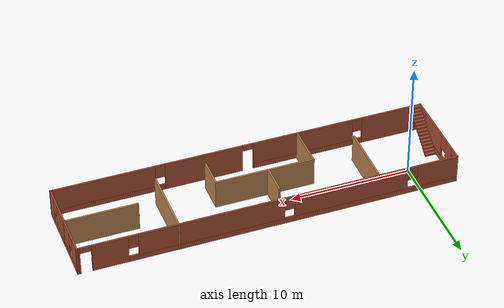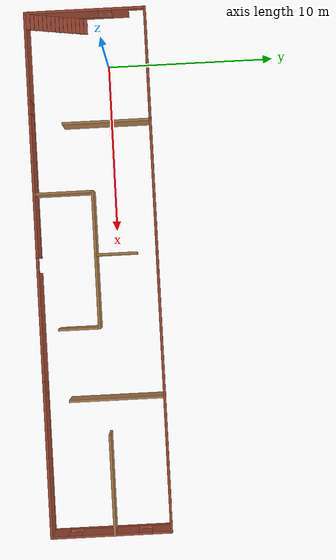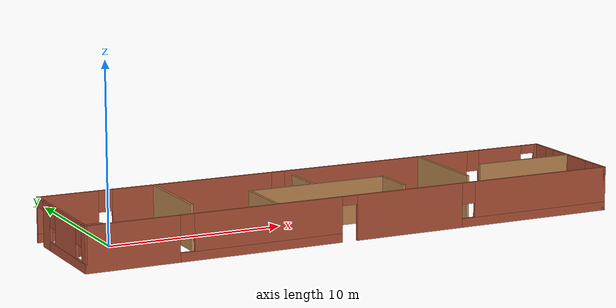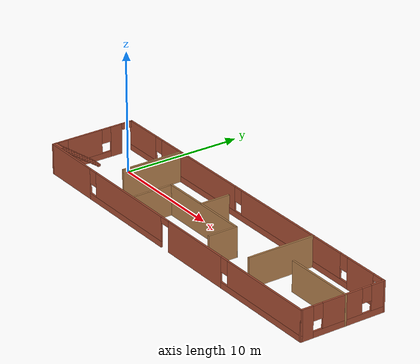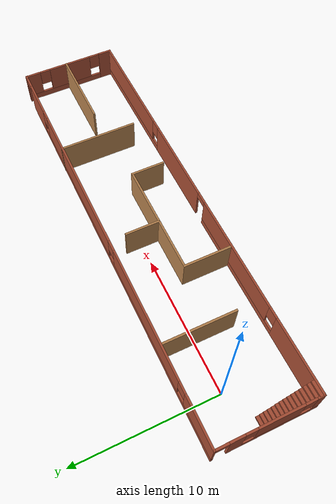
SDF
<?xml version='1.0'?>
<sdf version='1.7'>
  <model name='custom_world2.world'>
    <pose>12.5164 -1.16427 0 0 -0 0</pose>
    <link name='Stairs_1'>
      <visual name='Stairs_1_Visual_0'>
        <pose>-15.0705 -0.112993 0.083333 0 -0 0</pose>
        <geometry>
          <box>
            <size>1 0.233333 0.166667</size>
          </box>
        </geometry>
        <material>
          <script>
            <uri>file://media/materials/scripts/gazebo.material</uri>
            <name>Gazebo/Bricks</name>
          </script>
          <ambient>0.921569 0.807843 0.615686 1</ambient>
        </material>
        <meta>
          <layer>0</layer>
        </meta>
      </visual>
      <collision name='Stairs_1_Collision_0'>
        <geometry>
          <box>
            <size>1 0.233333 0.166667</size>
          </box>
        </geometry>
        <pose>-15.0705 -0.112993 0.083333 0 -0 0</pose>
      </collision>
      <visual name='Stairs_1_Visual_1'>
        <pose>-15.0705 -0.346326 0.25 0 -0 0</pose>
        <geometry>
          <box>
            <size>1 0.233333 0.166667</size>
          </box>
        </geometry>
        <material>
          <script>
            <uri>file://media/materials/scripts/gazebo.material</uri>
            <name>Gazebo/Bricks</name>
          </script>
          <ambient>0.921569 0.807843 0.615686 1</ambient>
        </material>
        <meta>
          <layer>0</layer>
        </meta>
      </visual>
      <collision name='Stairs_1_Collision_1'>
        <geometry>
          <box>
            <size>1 0.233333 0.166667</size>
          </box>
        </geometry>
        <pose>-15.0705 -0.346326 0.25 0 -0 0</pose>
      </collision>
      <visual name='Stairs_1_Visual_2'>
        <pose>-15.0705 -0.579659 0.416667 0 -0 0</pose>
        <geometry>
          <box>
            <size>1 0.233333 0.166667</size>
          </box>
        </geometry>
        <material>
          <script>
            <uri>file://media/materials/scripts/gazebo.material</uri>
            <name>Gazebo/Bricks</name>
          </script>
          <ambient>0.921569 0.807843 0.615686 1</ambient>
        </material>
        <meta>
          <layer>0</layer>
        </meta>
      </visual>
      <collision name='Stairs_1_Collision_2'>
        <geometry>
          <box>
            <size>1 0.233333 0.166667</size>
          </box>
        </geometry>
        <pose>-15.0705 -0.579659 0.416667 0 -0 0</pose>
      </collision>
      <visual name='Stairs_1_Visual_3'>
        <pose>-15.0705 -0.812993 0.583333 0 -0 0</pose>
        <geometry>
          <box>
            <size>1 0.233333 0.166667</size>
          </box>
        </geometry>
        <material>
          <script>
            <uri>file://media/materials/scripts/gazebo.material</uri>
            <name>Gazebo/Bricks</name>
          </script>
          <ambient>0.921569 0.807843 0.615686 1</ambient>
        </material>
        <meta>
          <layer>0</layer>
        </meta>
      </visual>
      <collision name='Stairs_1_Collision_3'>
        <geometry>
          <box>
            <size>1 0.233333 0.166667</size>
          </box>
        </geometry>
        <pose>-15.0705 -0.812993 0.583333 0 -0 0</pose>
      </collision>
      <visual name='Stairs_1_Visual_4'>
        <pose>-15.0705 -1.04633 0.75 0 -0 0</pose>
        <geometry>
          <box>
            <size>1 0.233333 0.166667</size>
          </box>
        </geometry>
        <material>
          <script>
            <uri>file://media/materials/scripts/gazebo.material</uri>
            <name>Gazebo/Bricks</name>
          </script>
          <ambient>0.921569 0.807843 0.615686 1</ambient>
        </material>
        <meta>
          <layer>0</layer>
        </meta>
      </visual>
      <collision name='Stairs_1_Collision_4'>
        <geometry>
          <box>
            <size>1 0.233333 0.166667</size>
          </box>
        </geometry>
        <pose>-15.0705 -1.04633 0.75 0 -0 0</pose>
      </collision>
      <visual name='Stairs_1_Visual_5'>
        <pose>-15.0705 -1.27966 0.916667 0 -0 0</pose>
        <geometry>
          <box>
            <size>1 0.233333 0.166667</size>
          </box>
        </geometry>
        <material>
          <script>
            <uri>file://media/materials/scripts/gazebo.material</uri>
            <name>Gazebo/Bricks</name>
          </script>
          <ambient>0.921569 0.807843 0.615686 1</ambient>
        </material>
        <meta>
          <layer>0</layer>
        </meta>
      </visual>
      <collision name='Stairs_1_Collision_5'>
        <geometry>
          <box>
            <size>1 0.233333 0.166667</size>
          </box>
        </geometry>
        <pose>-15.0705 -1.27966 0.916667 0 -0 0</pose>
      </collision>
      <visual name='Stairs_1_Visual_6'>
        <pose>-15.0705 -1.51299 1.08333 0 -0 0</pose>
        <geometry>
          <box>
            <size>1 0.233333 0.166667</size>
          </box>
        </geometry>
        <material>
          <script>
            <uri>file://media/materials/scripts/gazebo.material</uri>
            <name>Gazebo/Bricks</name>
          </script>
          <ambient>0.921569 0.807843 0.615686 1</ambient>
        </material>
        <meta>
          <layer>0</layer>
        </meta>
      </visual>
      <collision name='Stairs_1_Collision_6'>
        <geometry>
          <box>
            <size>1 0.233333 0.166667</size>
          </box>
        </geometry>
        <pose>-15.0705 -1.51299 1.08333 0 -0 0</pose>
      </collision>
      <visual name='Stairs_1_Visual_7'>
        <pose>-15.0705 -1.74633 1.25 0 -0 0</pose>
        <geometry>
          <box>
            <size>1 0.233333 0.166667</size>
          </box>
        </geometry>
        <material>
          <script>
            <uri>file://media/materials/scripts/gazebo.material</uri>
            <name>Gazebo/Bricks</name>
          </script>
          <ambient>0.921569 0.807843 0.615686 1</ambient>
        </material>
        <meta>
          <layer>0</layer>
        </meta>
      </visual>
      <collision name='Stairs_1_Collision_7'>
        <geometry>
          <box>
            <size>1 0.233333 0.166667</size>
          </box>
        </geometry>
        <pose>-15.0705 -1.74633 1.25 0 -0 0</pose>
      </collision>
      <visual name='Stairs_1_Visual_8'>
        <pose>-15.0705 -1.97966 1.41667 0 -0 0</pose>
        <geometry>
          <box>
            <size>1 0.233333 0.166667</size>
          </box>
        </geometry>
        <material>
          <script>
            <uri>file://media/materials/scripts/gazebo.material</uri>
            <name>Gazebo/Bricks</name>
          </script>
          <ambient>0.921569 0.807843 0.615686 1</ambient>
        </material>
        <meta>
          <layer>0</layer>
        </meta>
      </visual>
      <collision name='Stairs_1_Collision_8'>
        <geometry>
          <box>
            <size>1 0.233333 0.166667</size>
          </box>
        </geometry>
        <pose>-15.0705 -1.97966 1.41667 0 -0 0</pose>
      </collision>
      <visual name='Stairs_1_Visual_9'>
        <pose>-15.0705 -2.21299 1.58333 0 -0 0</pose>
        <geometry>
          <box>
            <size>1 0.233333 0.166667</size>
          </box>
        </geometry>
        <material>
          <script>
            <uri>file://media/materials/scripts/gazebo.material</uri>
            <name>Gazebo/Bricks</name>
          </script>
          <ambient>0.921569 0.807843 0.615686 1</ambient>
        </material>
        <meta>
          <layer>0</layer>
        </meta>
      </visual>
      <collision name='Stairs_1_Collision_9'>
        <geometry>
          <box>
            <size>1 0.233333 0.166667</size>
          </box>
        </geometry>
        <pose>-15.0705 -2.21299 1.58333 0 -0 0</pose>
      </collision>
      <visual name='Stairs_1_Visual_10'>
        <pose>-15.0705 -2.44633 1.75 0 -0 0</pose>
        <geometry>
          <box>
            <size>1 0.233333 0.166667</size>
          </box>
        </geometry>
        <material>
          <script>
            <uri>file://media/materials/scripts/gazebo.material</uri>
            <name>Gazebo/Bricks</name>
          </script>
          <ambient>0.921569 0.807843 0.615686 1</ambient>
        </material>
        <meta>
          <layer>0</layer>
        </meta>
      </visual>
      <collision name='Stairs_1_Collision_10'>
        <geometry>
          <box>
            <size>1 0.233333 0.166667</size>
          </box>
        </geometry>
        <pose>-15.0705 -2.44633 1.75 0 -0 0</pose>
      </collision>
      <visual name='Stairs_1_Visual_11'>
        <pose>-15.0705 -2.67966 1.91667 0 -0 0</pose>
        <geometry>
          <box>
            <size>1 0.233333 0.166667</size>
          </box>
        </geometry>
        <material>
          <script>
            <uri>file://media/materials/scripts/gazebo.material</uri>
            <name>Gazebo/Bricks</name>
          </script>
          <ambient>0.921569 0.807843 0.615686 1</ambient>
        </material>
        <meta>
          <layer>0</layer>
        </meta>
      </visual>
      <collision name='Stairs_1_Collision_11'>
        <geometry>
          <box>
            <size>1 0.233333 0.166667</size>
          </box>
        </geometry>
        <pose>-15.0705 -2.67966 1.91667 0 -0 0</pose>
      </collision>
      <visual name='Stairs_1_Visual_12'>
        <pose>-15.0705 -2.91299 2.08333 0 -0 0</pose>
        <geometry>
          <box>
            <size>1 0.233333 0.166667</size>
          </box>
        </geometry>
        <material>
          <script>
            <uri>file://media/materials/scripts/gazebo.material</uri>
            <name>Gazebo/Bricks</name>
          </script>
          <ambient>0.921569 0.807843 0.615686 1</ambient>
        </material>
        <meta>
          <layer>0</layer>
        </meta>
      </visual>
      <collision name='Stairs_1_Collision_12'>
        <geometry>
          <box>
            <size>1 0.233333 0.166667</size>
          </box>
        </geometry>
        <pose>-15.0705 -2.91299 2.08333 0 -0 0</pose>
      </collision>
      <visual name='Stairs_1_Visual_13'>
        <pose>-15.0705 -3.14633 2.25 0 -0 0</pose>
        <geometry>
          <box>
            <size>1 0.233333 0.166667</size>
          </box>
        </geometry>
        <material>
          <script>
            <uri>file://media/materials/scripts/gazebo.material</uri>
            <name>Gazebo/Bricks</name>
          </script>
          <ambient>0.921569 0.807843 0.615686 1</ambient>
        </material>
        <meta>
          <layer>0</layer>
        </meta>
      </visual>
      <collision name='Stairs_1_Collision_13'>
        <geometry>
          <box>
            <size>1 0.233333 0.166667</size>
          </box>
        </geometry>
        <pose>-15.0705 -3.14633 2.25 0 -0 0</pose>
      </collision>
      <visual name='Stairs_1_Visual_14'>
        <pose>-15.0705 -3.37966 2.41667 0 -0 0</pose>
        <geometry>
          <box>
            <size>1 0.233333 0.166667</size>
          </box>
        </geometry>
        <material>
          <script>
            <uri>file://media/materials/scripts/gazebo.material</uri>
            <name>Gazebo/Bricks</name>
          </script>
          <ambient>0.921569 0.807843 0.615686 1</ambient>
        </material>
        <meta>
          <layer>0</layer>
        </meta>
      </visual>
      <collision name='Stairs_1_Collision_14'>
        <geometry>
          <box>
            <size>1 0.233333 0.166667</size>
          </box>
        </geometry>
        <pose>-15.0705 -3.37966 2.41667 0 -0 0</pose>
      </collision>
    </link>
    <link name='Wall_10'>
      <pose>-0.006953 3.53941 0 0 -0 3.14159</pose>
      <visual name='Wall_10_Visual_0'>
        <pose>-15.4743 0 1.25 0 -0 0</pose>
        <geometry>
          <box>
            <size>0.301407 0.15 2.5</size>
          </box>
        </geometry>
        <material>
          <script>
            <uri>file://media/materials/scripts/gazebo.material</uri>
            <name>Gazebo/Bricks</name>
          </script>
          <ambient>1 1 1 1</ambient>
        </material>
        <meta>
          <layer>0</layer>
        </meta>
      </visual>
      <collision name='Wall_10_Collision_0'>
        <geometry>
          <box>
            <size>0.301407 0.15 2.5</size>
          </box>
        </geometry>
        <pose>-15.4743 0 1.25 0 -0 0</pose>
      </collision>
      <visual name='Wall_10_Visual_1'>
        <pose>-12.9841 0 1.25 0 -0 0</pose>
        <geometry>
          <box>
            <size>2.87895 0.15 2.5</size>
          </box>
        </geometry>
        <material>
          <script>
            <uri>file://media/materials/scripts/gazebo.material</uri>
            <name>Gazebo/Bricks</name>
          </script>
          <ambient>1 1 1 1</ambient>
        </material>
        <meta>
          <layer>0</layer>
        </meta>
      </visual>
      <collision name='Wall_10_Collision_1'>
        <geometry>
          <box>
            <size>2.87895 0.15 2.5</size>
          </box>
        </geometry>
        <pose>-12.9841 0 1.25 0 -0 0</pose>
      </collision>
      <visual name='Wall_10_Visual_2'>
        <pose>2.04018 0 0.25 0 -0 0</pose>
        <geometry>
          <box>
            <size>27.1696 0.15 0.5</size>
          </box>
        </geometry>
        <material>
          <script>
            <uri>file://media/materials/scripts/gazebo.material</uri>
            <name>Gazebo/Bricks</name>
          </script>
          <ambient>1 1 1 1</ambient>
        </material>
        <meta>
          <layer>0</layer>
        </meta>
      </visual>
      <collision name='Wall_10_Collision_2'>
        <geometry>
          <box>
            <size>27.1696 0.15 0.5</size>
          </box>
        </geometry>
        <pose>2.04018 0 0.25 0 -0 0</pose>
      </collision>
      <visual name='Wall_10_Visual_3'>
        <pose>-4.84765 0 1.5 0 -0 0</pose>
        <geometry>
          <box>
            <size>11.794 0.15 2</size>
          </box>
        </geometry>
        <material>
          <script>
            <uri>file://media/materials/scripts/gazebo.material</uri>
            <name>Gazebo/Bricks</name>
          </script>
          <ambient>1 1 1 1</ambient>
        </material>
        <meta>
          <layer>0</layer>
        </meta>
      </visual>
      <collision name='Wall_10_Collision_3'>
        <geometry>
          <box>
            <size>11.794 0.15 2</size>
          </box>
        </geometry>
        <pose>-4.84765 0 1.5 0 -0 0</pose>
      </collision>
      <visual name='Wall_10_Visual_4'>
        <pose>6.60304 0 1.5 0 -0 0</pose>
        <geometry>
          <box>
            <size>9.50738 0.15 2</size>
          </box>
        </geometry>
        <material>
          <script>
            <uri>file://media/materials/scripts/gazebo.material</uri>
            <name>Gazebo/Bricks</name>
          </script>
          <ambient>1 1 1 1</ambient>
        </material>
        <meta>
          <layer>0</layer>
        </meta>
      </visual>
      <collision name='Wall_10_Collision_4'>
        <geometry>
          <box>
            <size>9.50738 0.15 2</size>
          </box>
        </geometry>
        <pose>6.60304 0 1.5 0 -0 0</pose>
      </collision>
      <visual name='Wall_10_Visual_5'>
        <pose>13.8909 0 1.5 0 -0 0</pose>
        <geometry>
          <box>
            <size>3.46827 0.15 2</size>
          </box>
        </geometry>
        <material>
          <script>
            <uri>file://media/materials/scripts/gazebo.material</uri>
            <name>Gazebo/Bricks</name>
          </script>
          <ambient>1 1 1 1</ambient>
        </material>
        <meta>
          <layer>0</layer>
        </meta>
      </visual>
      <collision name='Wall_10_Collision_5'>
        <geometry>
          <box>
            <size>3.46827 0.15 2</size>
          </box>
        </geometry>
        <pose>13.8909 0 1.5 0 -0 0</pose>
      </collision>
      <visual name='Wall_10_Visual_6'>
        <pose>-11.1446 0 1.9 0 -0 0</pose>
        <geometry>
          <box>
            <size>0.8 0.15 1.2</size>
          </box>
        </geometry>
        <material>
          <script>
            <uri>file://media/materials/scripts/gazebo.material</uri>
            <name>Gazebo/Bricks</name>
          </script>
          <ambient>1 1 1 1</ambient>
        </material>
        <meta>
          <layer>0</layer>
        </meta>
      </visual>
      <collision name='Wall_10_Collision_6'>
        <geometry>
          <box>
            <size>0.8 0.15 1.2</size>
          </box>
        </geometry>
        <pose>-11.1446 0 1.9 0 -0 0</pose>
      </collision>
      <visual name='Wall_10_Visual_7'>
        <pose>1.44935 0 1.9 0 -0 0</pose>
        <geometry>
          <box>
            <size>0.8 0.15 1.2</size>
          </box>
        </geometry>
        <material>
          <script>
            <uri>file://media/materials/scripts/gazebo.material</uri>
            <name>Gazebo/Bricks</name>
          </script>
          <ambient>1 1 1 1</ambient>
        </material>
        <meta>
          <layer>0</layer>
        </meta>
      </visual>
      <collision name='Wall_10_Collision_7'>
        <geometry>
          <box>
            <size>0.8 0.15 1.2</size>
          </box>
        </geometry>
        <pose>1.44935 0 1.9 0 -0 0</pose>
      </collision>
      <visual name='Wall_10_Visual_8'>
        <pose>11.7567 0 1.9 0 -0 0</pose>
        <geometry>
          <box>
            <size>0.8 0.15 1.2</size>
          </box>
        </geometry>
        <material>
          <script>
            <uri>file://media/materials/scripts/gazebo.material</uri>
            <name>Gazebo/Bricks</name>
          </script>
          <ambient>1 1 1 1</ambient>
        </material>
        <meta>
          <layer>0</layer>
        </meta>
      </visual>
      <collision name='Wall_10_Collision_8'>
        <geometry>
          <box>
            <size>0.8 0.15 1.2</size>
          </box>
        </geometry>
        <pose>11.7567 0 1.9 0 -0 0</pose>
      </collision>
      <visual name='Wall_10_Visual_9'>
        <pose>-14.8736 0 2.25 0 -0 0</pose>
        <geometry>
          <box>
            <size>0.9 0.15 0.5</size>
          </box>
        </geometry>
        <material>
          <script>
            <uri>file://media/materials/scripts/gazebo.material</uri>
            <name>Gazebo/Bricks</name>
          </script>
          <ambient>1 1 1 1</ambient>
        </material>
        <meta>
          <layer>0</layer>
        </meta>
      </visual>
      <collision name='Wall_10_Collision_9'>
        <geometry>
          <box>
            <size>0.9 0.15 0.5</size>
          </box>
        </geometry>
        <pose>-14.8736 0 2.25 0 -0 0</pose>
      </collision>
    </link>
    <link name='Wall_12'>
      <collision name='Wall_12_Collision'>
        <geometry>
          <box>
            <size>5.25 0.15 2.5</size>
          </box>
        </geometry>
        <pose>0 0 1.25 0 -0 0</pose>
      </collision>
      <visual name='Wall_12_Visual'>
        <pose>0 0 1.25 0 -0 0</pose>
        <geometry>
          <box>
            <size>5.25 0.15 2.5</size>
          </box>
        </geometry>
        <material>
          <script>
            <uri>file://media/materials/scripts/gazebo.material</uri>
            <name>Gazebo/Wood</name>
          </script>
          <ambient>0.996078 0.47451 0.0196078 1</ambient>
        </material>
        <meta>
          <layer>0</layer>
        </meta>
      </visual>
      <pose>-8.92219 0.940233 0 0 -0 -1.5708</pose>
    </link>
    <link name='Wall_14'>
      <collision name='Wall_14_Collision'>
        <geometry>
          <box>
            <size>3.5 0.15 2.5</size>
          </box>
        </geometry>
        <pose>0 0 1.25 0 -0 0</pose>
      </collision>
      <visual name='Wall_14_Visual'>
        <pose>0 0 1.25 0 -0 0</pose>
        <geometry>
          <box>
            <size>3.5 0.15 2.5</size>
          </box>
        </geometry>
        <material>
          <script>
            <uri>file://media/materials/scripts/gazebo.material</uri>
            <name>Gazebo/Wood</name>
          </script>
          <ambient>0.996078 0.47451 0.0196078 1</ambient>
        </material>
        <meta>
          <layer>0</layer>
        </meta>
      </visual>
      <pose>-4.83266 -1.77906 0 0 -0 1.5708</pose>
    </link>
    <link name='Wall_15'>
      <collision name='Wall_15_Collision'>
        <geometry>
          <box>
            <size>8.25 0.15 2.5</size>
          </box>
        </geometry>
        <pose>0 0 1.25 0 -0 0</pose>
      </collision>
      <visual name='Wall_15_Visual'>
        <pose>0 0 1.25 0 -0 0</pose>
        <geometry>
          <box>
            <size>8.25 0.15 2.5</size>
          </box>
        </geometry>
        <material>
          <script>
            <uri>file://media/materials/scripts/gazebo.material</uri>
            <name>Gazebo/Wood</name>
          </script>
          <ambient>0.996078 0.47451 0.0196078 1</ambient>
        </material>
        <meta>
          <layer>0</layer>
        </meta>
      </visual>
      <pose>-0.782658 -0.104055 0 0 -0 0</pose>
    </link>
    <link name='Wall_18'>
      <collision name='Wall_18_Collision'>
        <geometry>
          <box>
            <size>2.5 0.15 2.5</size>
          </box>
        </geometry>
        <pose>0 0 1.25 0 -0 0</pose>
      </collision>
      <visual name='Wall_18_Visual'>
        <pose>0 0 1.25 0 -0 0</pose>
        <geometry>
          <box>
            <size>2.5 0.15 2.5</size>
          </box>
        </geometry>
        <material>
          <script>
            <uri>file://media/materials/scripts/gazebo.material</uri>
            <name>Gazebo/Wood</name>
          </script>
          <ambient>0.996078 0.47451 0.0196078 1</ambient>
        </material>
        <meta>
          <layer>0</layer>
        </meta>
      </visual>
      <pose>-1.07029 1.11564 0 0 -0 -1.5708</pose>
    </link>
    <link name='Wall_20'>
      <collision name='Wall_20_Collision'>
        <geometry>
          <box>
            <size>5.75 0.15 2.5</size>
          </box>
        </geometry>
        <pose>0 0 1.25 0 -0 0</pose>
      </collision>
      <visual name='Wall_20_Visual'>
        <pose>0 0 1.25 0 -0 0</pose>
        <geometry>
          <box>
            <size>5.75 0.15 2.5</size>
          </box>
        </geometry>
        <material>
          <script>
            <uri>file://media/materials/scripts/gazebo.material</uri>
            <name>Gazebo/Wood</name>
          </script>
          <ambient>0.996078 0.47451 0.0196078 1</ambient>
        </material>
        <meta>
          <layer>0</layer>
        </meta>
      </visual>
      <pose>7.52388 0.760591 0 0 -0 -1.5708</pose>
    </link>
    <link name='Wall_22'>
      <collision name='Wall_22_Collision'>
        <geometry>
          <box>
            <size>6 0.15 2.5</size>
          </box>
        </geometry>
        <pose>0 0 1.25 0 -0 0</pose>
      </collision>
      <visual name='Wall_22_Visual'>
        <pose>0 0 1.25 0 -0 0</pose>
        <geometry>
          <box>
            <size>6 0.15 2.5</size>
          </box>
        </geometry>
        <material>
          <script>
            <uri>file://media/materials/scripts/gazebo.material</uri>
            <name>Gazebo/Wood</name>
          </script>
          <ambient>0.996078 0.47451 0.0196078 1</ambient>
        </material>
        <meta>
          <layer>0</layer>
        </meta>
      </visual>
      <pose>12.632 0.186947 0 0 -0 3.14159</pose>
    </link>
    <link name='Wall_25'>
      <collision name='Wall_25_Collision'>
        <geometry>
          <box>
            <size>2.5 0.15 2.5</size>
          </box>
        </geometry>
        <pose>0 0 1.25 0 -0 0</pose>
      </collision>
      <visual name='Wall_25_Visual'>
        <pose>0 0 1.25 0 -0 0</pose>
        <geometry>
          <box>
            <size>2.5 0.15 2.5</size>
          </box>
        </geometry>
        <material>
          <script>
            <uri>file://media/materials/scripts/gazebo.material</uri>
            <name>Gazebo/Wood</name>
          </script>
          <ambient>0.996078 0.47451 0.0196078 1</ambient>
        </material>
        <meta>
          <layer>0</layer>
        </meta>
      </visual>
      <pose>3.26734 -1.27906 0 0 -0 -1.5708</pose>
    </link>
    <link name='Wall_7'>
      <pose>-15.557 -0.010591 0 0 -0 -1.5708</pose>
      <visual name='Wall_7_Visual_0'>
        <pose>-3.56179 0 1.25 0 -0 0</pose>
        <geometry>
          <box>
            <size>0.126424 0.15 2.5</size>
          </box>
        </geometry>
        <material>
          <script>
            <uri>file://media/materials/scripts/gazebo.material</uri>
            <name>Gazebo/Bricks</name>
          </script>
          <ambient>1 1 1 1</ambient>
        </material>
        <meta>
          <layer>0</layer>
        </meta>
      </visual>
      <collision name='Wall_7_Collision_0'>
        <geometry>
          <box>
            <size>0.126424 0.15 2.5</size>
          </box>
        </geometry>
        <pose>-3.56179 0 1.25 0 -0 0</pose>
      </collision>
      <visual name='Wall_7_Visual_1'>
        <pose>-2.09134 0 1.25 0 -0 0</pose>
        <geometry>
          <box>
            <size>1.01447 0.15 2.5</size>
          </box>
        </geometry>
        <material>
          <script>
            <uri>file://media/materials/scripts/gazebo.material</uri>
            <name>Gazebo/Bricks</name>
          </script>
          <ambient>1 1 1 1</ambient>
        </material>
        <meta>
          <layer>0</layer>
        </meta>
      </visual>
      <collision name='Wall_7_Collision_1'>
        <geometry>
          <box>
            <size>1.01447 0.15 2.5</size>
          </box>
        </geometry>
        <pose>-2.09134 0 1.25 0 -0 0</pose>
      </collision>
      <visual name='Wall_7_Visual_2'>
        <pose>1.02045 0 0.25 0 -0 0</pose>
        <geometry>
          <box>
            <size>5.2091 0.15 0.5</size>
          </box>
        </geometry>
        <material>
          <script>
            <uri>file://media/materials/scripts/gazebo.material</uri>
            <name>Gazebo/Bricks</name>
          </script>
          <ambient>1 1 1 1</ambient>
        </material>
        <meta>
          <layer>0</layer>
        </meta>
      </visual>
      <collision name='Wall_7_Collision_2'>
        <geometry>
          <box>
            <size>5.2091 0.15 0.5</size>
          </box>
        </geometry>
        <pose>1.02045 0 0.25 0 -0 0</pose>
      </collision>
      <visual name='Wall_7_Visual_3'>
        <pose>0.75073 0 1.5 0 -0 0</pose>
        <geometry>
          <box>
            <size>3.06966 0.15 2</size>
          </box>
        </geometry>
        <material>
          <script>
            <uri>file://media/materials/scripts/gazebo.material</uri>
            <name>Gazebo/Bricks</name>
          </script>
          <ambient>1 1 1 1</ambient>
        </material>
        <meta>
          <layer>0</layer>
        </meta>
      </visual>
      <collision name='Wall_7_Collision_3'>
        <geometry>
          <box>
            <size>3.06966 0.15 2</size>
          </box>
        </geometry>
        <pose>0.75073 0 1.5 0 -0 0</pose>
      </collision>
      <visual name='Wall_7_Visual_4'>
        <pose>3.35528 0 1.5 0 -0 0</pose>
        <geometry>
          <box>
            <size>0.539438 0.15 2</size>
          </box>
        </geometry>
        <material>
          <script>
            <uri>file://media/materials/scripts/gazebo.material</uri>
            <name>Gazebo/Bricks</name>
          </script>
          <ambient>1 1 1 1</ambient>
        </material>
        <meta>
          <layer>0</layer>
        </meta>
      </visual>
      <collision name='Wall_7_Collision_4'>
        <geometry>
          <box>
            <size>0.539438 0.15 2</size>
          </box>
        </geometry>
        <pose>3.35528 0 1.5 0 -0 0</pose>
      </collision>
      <visual name='Wall_7_Visual_5'>
        <pose>-1.1841 0 1.9 0 -0 0</pose>
        <geometry>
          <box>
            <size>0.8 0.15 1.2</size>
          </box>
        </geometry>
        <material>
          <script>
            <uri>file://media/materials/scripts/gazebo.material</uri>
            <name>Gazebo/Bricks</name>
          </script>
          <ambient>1 1 1 1</ambient>
        </material>
        <meta>
          <layer>0</layer>
        </meta>
      </visual>
      <collision name='Wall_7_Collision_5'>
        <geometry>
          <box>
            <size>0.8 0.15 1.2</size>
          </box>
        </geometry>
        <pose>-1.1841 0 1.9 0 -0 0</pose>
      </collision>
      <visual name='Wall_7_Visual_6'>
        <pose>2.68556 0 1.9 0 -0 0</pose>
        <geometry>
          <box>
            <size>0.8 0.15 1.2</size>
          </box>
        </geometry>
        <material>
          <script>
            <uri>file://media/materials/scripts/gazebo.material</uri>
            <name>Gazebo/Bricks</name>
          </script>
          <ambient>1 1 1 1</ambient>
        </material>
        <meta>
          <layer>0</layer>
        </meta>
      </visual>
      <collision name='Wall_7_Collision_6'>
        <geometry>
          <box>
            <size>0.8 0.15 1.2</size>
          </box>
        </geometry>
        <pose>2.68556 0 1.9 0 -0 0</pose>
      </collision>
      <visual name='Wall_7_Visual_7'>
        <pose>-3.04858 0 2.25 0 -0 0</pose>
        <geometry>
          <box>
            <size>0.9 0.15 0.5</size>
          </box>
        </geometry>
        <material>
          <script>
            <uri>file://media/materials/scripts/gazebo.material</uri>
            <name>Gazebo/Bricks</name>
          </script>
          <ambient>1 1 1 1</ambient>
        </material>
        <meta>
          <layer>0</layer>
        </meta>
      </visual>
      <collision name='Wall_7_Collision_7'>
        <geometry>
          <box>
            <size>0.9 0.15 0.5</size>
          </box>
        </geometry>
        <pose>-3.04858 0 2.25 0 -0 0</pose>
      </collision>
    </link>
    <link name='Wall_8'>
      <pose>-0.006953 -3.56059 0 0 -0 0</pose>
      <visual name='Wall_8_Visual_0'>
        <pose>-13.0145 0 1.25 0 -0 0</pose>
        <geometry>
          <box>
            <size>5.22098 0.15 2.5</size>
          </box>
        </geometry>
        <material>
          <script>
            <uri>file://media/materials/scripts/gazebo.material</uri>
            <name>Gazebo/Bricks</name>
          </script>
          <ambient>1 1 1 1</ambient>
        </material>
        <meta>
          <layer>0</layer>
        </meta>
      </visual>
      <collision name='Wall_8_Collision_0'>
        <geometry>
          <box>
            <size>5.22098 0.15 2.5</size>
          </box>
        </geometry>
        <pose>-13.0145 0 1.25 0 -0 0</pose>
      </collision>
      <visual name='Wall_8_Visual_1'>
        <pose>3.07454 0 1.25 0 -0 0</pose>
        <geometry>
          <box>
            <size>6.4592 0.15 2.5</size>
          </box>
        </geometry>
        <material>
          <script>
            <uri>file://media/materials/scripts/gazebo.material</uri>
            <name>Gazebo/Bricks</name>
          </script>
          <ambient>1 1 1 1</ambient>
        </material>
        <meta>
          <layer>0</layer>
        </meta>
      </visual>
      <collision name='Wall_8_Collision_1'>
        <geometry>
          <box>
            <size>6.4592 0.15 2.5</size>
          </box>
        </geometry>
        <pose>3.07454 0 1.25 0 -0 0</pose>
      </collision>
      <visual name='Wall_8_Visual_2'>
        <pose>-5.72954 0 0.25 0 -0 0</pose>
        <geometry>
          <box>
            <size>9.34896 0.15 0.5</size>
          </box>
        </geometry>
        <material>
          <script>
            <uri>file://media/materials/scripts/gazebo.material</uri>
            <name>Gazebo/Bricks</name>
          </script>
          <ambient>1 1 1 1</ambient>
        </material>
        <meta>
          <layer>0</layer>
        </meta>
      </visual>
      <collision name='Wall_8_Collision_2'>
        <geometry>
          <box>
            <size>9.34896 0.15 0.5</size>
          </box>
        </geometry>
        <pose>-5.72954 0 0.25 0 -0 0</pose>
      </collision>
      <visual name='Wall_8_Visual_3'>
        <pose>10.9646 0 0.25 0 -0 0</pose>
        <geometry>
          <box>
            <size>9.32087 0.15 0.5</size>
          </box>
        </geometry>
        <material>
          <script>
            <uri>file://media/materials/scripts/gazebo.material</uri>
            <name>Gazebo/Bricks</name>
          </script>
          <ambient>1 1 1 1</ambient>
        </material>
        <meta>
          <layer>0</layer>
        </meta>
      </visual>
      <collision name='Wall_8_Collision_3'>
        <geometry>
          <box>
            <size>9.32087 0.15 0.5</size>
          </box>
        </geometry>
        <pose>10.9646 0 0.25 0 -0 0</pose>
      </collision>
      <visual name='Wall_8_Visual_4'>
        <pose>-5.32954 0 1.5 0 -0 0</pose>
        <geometry>
          <box>
            <size>8.54896 0.15 2</size>
          </box>
        </geometry>
        <material>
          <script>
            <uri>file://media/materials/scripts/gazebo.material</uri>
            <name>Gazebo/Bricks</name>
          </script>
          <ambient>1 1 1 1</ambient>
        </material>
        <meta>
          <layer>0</layer>
        </meta>
      </visual>
      <collision name='Wall_8_Collision_4'>
        <geometry>
          <box>
            <size>8.54896 0.15 2</size>
          </box>
        </geometry>
        <pose>-5.32954 0 1.5 0 -0 0</pose>
      </collision>
      <visual name='Wall_8_Visual_5'>
        <pose>-5.32954 0 1.5 0 -0 0</pose>
        <geometry>
          <box>
            <size>8.54896 0.15 2</size>
          </box>
        </geometry>
        <material>
          <script>
            <uri>file://media/materials/scripts/gazebo.material</uri>
            <name>Gazebo/Bricks</name>
          </script>
          <ambient>1 1 1 1</ambient>
        </material>
        <meta>
          <layer>0</layer>
        </meta>
      </visual>
      <collision name='Wall_8_Collision_5'>
        <geometry>
          <box>
            <size>8.54896 0.15 2</size>
          </box>
        </geometry>
        <pose>-5.32954 0 1.5 0 -0 0</pose>
      </collision>
      <visual name='Wall_8_Visual_6'>
        <pose>11.3646 0 1.5 0 -0 0</pose>
        <geometry>
          <box>
            <size>8.52087 0.15 2</size>
          </box>
        </geometry>
        <material>
          <script>
            <uri>file://media/materials/scripts/gazebo.material</uri>
            <name>Gazebo/Bricks</name>
          </script>
          <ambient>1 1 1 1</ambient>
        </material>
        <meta>
          <layer>0</layer>
        </meta>
      </visual>
      <collision name='Wall_8_Collision_6'>
        <geometry>
          <box>
            <size>8.52087 0.15 2</size>
          </box>
        </geometry>
        <pose>11.3646 0 1.5 0 -0 0</pose>
      </collision>
      <visual name='Wall_8_Visual_7'>
        <pose>-10.004 0 1.9 0 -0 0</pose>
        <geometry>
          <box>
            <size>0.8 0.15 1.2</size>
          </box>
        </geometry>
        <material>
          <script>
            <uri>file://media/materials/scripts/gazebo.material</uri>
            <name>Gazebo/Bricks</name>
          </script>
          <ambient>1 1 1 1</ambient>
        </material>
        <meta>
          <layer>0</layer>
        </meta>
      </visual>
      <collision name='Wall_8_Collision_7'>
        <geometry>
          <box>
            <size>0.8 0.15 1.2</size>
          </box>
        </geometry>
        <pose>-10.004 0 1.9 0 -0 0</pose>
      </collision>
      <visual name='Wall_8_Visual_8'>
        <pose>6.70413 0 1.9 0 -0 0</pose>
        <geometry>
          <box>
            <size>0.8 0.15 1.2</size>
          </box>
        </geometry>
        <material>
          <script>
            <uri>file://media/materials/scripts/gazebo.material</uri>
            <name>Gazebo/Bricks</name>
          </script>
          <ambient>1 1 1 1</ambient>
        </material>
        <meta>
          <layer>0</layer>
        </meta>
      </visual>
      <collision name='Wall_8_Collision_8'>
        <geometry>
          <box>
            <size>0.8 0.15 1.2</size>
          </box>
        </geometry>
        <pose>6.70413 0 1.9 0 -0 0</pose>
      </collision>
      <visual name='Wall_8_Visual_9'>
        <pose>-0.605062 0 2.25 0 -0 0</pose>
        <geometry>
          <box>
            <size>0.9 0.15 0.5</size>
          </box>
        </geometry>
        <material>
          <script>
            <uri>file://media/materials/scripts/gazebo.material</uri>
            <name>Gazebo/Bricks</name>
          </script>
          <ambient>1 1 1 1</ambient>
        </material>
        <meta>
          <layer>0</layer>
        </meta>
      </visual>
      <collision name='Wall_8_Collision_9'>
        <geometry>
          <box>
            <size>0.9 0.15 0.5</size>
          </box>
        </geometry>
        <pose>-0.605062 0 2.25 0 -0 0</pose>
      </collision>
      <visual name='Wall_8_Visual_10'>
        <pose>-0.605062 0 2.25 0 -0 0</pose>
        <geometry>
          <box>
            <size>0.9 0.15 0.5</size>
          </box>
        </geometry>
        <material>
          <script>
            <uri>file://media/materials/scripts/gazebo.material</uri>
            <name>Gazebo/Bricks</name>
          </script>
          <ambient>1 1 1 1</ambient>
        </material>
        <meta>
          <layer>0</layer>
        </meta>
      </visual>
      <collision name='Wall_8_Collision_10'>
        <geometry>
          <box>
            <size>0.9 0.15 0.5</size>
          </box>
        </geometry>
        <pose>-0.605062 0 2.25 0 -0 0</pose>
      </collision>
    </link>
    <link name='Wall_9'>
      <pose>15.543 -0.010591 0 0 -0 1.5708</pose>
      <visual name='Wall_9_Visual_0'>
        <pose>-3.09144 0 1.25 0 -0 0</pose>
        <geometry>
          <box>
            <size>1.06712 0.15 2.5</size>
          </box>
        </geometry>
        <material>
          <script>
            <uri>file://media/materials/scripts/gazebo.material</uri>
            <name>Gazebo/Bricks</name>
          </script>
          <ambient>1 1 1 1</ambient>
        </material>
        <meta>
          <layer>0</layer>
        </meta>
      </visual>
      <collision name='Wall_9_Collision_0'>
        <geometry>
          <box>
            <size>1.06712 0.15 2.5</size>
          </box>
        </geometry>
        <pose>-3.09144 0 1.25 0 -0 0</pose>
      </collision>
      <visual name='Wall_9_Visual_1'>
        <pose>0.53356 0 0.25 0 -0 0</pose>
        <geometry>
          <box>
            <size>6.18288 0.15 0.5</size>
          </box>
        </geometry>
        <material>
          <script>
            <uri>file://media/materials/scripts/gazebo.material</uri>
            <name>Gazebo/Bricks</name>
          </script>
          <ambient>1 1 1 1</ambient>
        </material>
        <meta>
          <layer>0</layer>
        </meta>
      </visual>
      <collision name='Wall_9_Collision_1'>
        <geometry>
          <box>
            <size>6.18288 0.15 0.5</size>
          </box>
        </geometry>
        <pose>0.53356 0 0.25 0 -0 0</pose>
      </collision>
      <visual name='Wall_9_Visual_2'>
        <pose>-0.064744 0 1.5 0 -0 0</pose>
        <geometry>
          <box>
            <size>3.38627 0.15 2</size>
          </box>
        </geometry>
        <material>
          <script>
            <uri>file://media/materials/scripts/gazebo.material</uri>
            <name>Gazebo/Bricks</name>
          </script>
          <ambient>1 1 1 1</ambient>
        </material>
        <meta>
          <layer>0</layer>
        </meta>
      </visual>
      <collision name='Wall_9_Collision_2'>
        <geometry>
          <box>
            <size>3.38627 0.15 2</size>
          </box>
        </geometry>
        <pose>-0.064744 0 1.5 0 -0 0</pose>
      </collision>
      <visual name='Wall_9_Visual_3'>
        <pose>3.0267 0 1.5 0 -0 0</pose>
        <geometry>
          <box>
            <size>1.19661 0.15 2</size>
          </box>
        </geometry>
        <material>
          <script>
            <uri>file://media/materials/scripts/gazebo.material</uri>
            <name>Gazebo/Bricks</name>
          </script>
          <ambient>1 1 1 1</ambient>
        </material>
        <meta>
          <layer>0</layer>
        </meta>
      </visual>
      <collision name='Wall_9_Collision_3'>
        <geometry>
          <box>
            <size>1.19661 0.15 2</size>
          </box>
        </geometry>
        <pose>3.0267 0 1.5 0 -0 0</pose>
      </collision>
      <visual name='Wall_9_Visual_4'>
        <pose>-2.15788 0 1.9 0 -0 0</pose>
        <geometry>
          <box>
            <size>0.8 0.15 1.2</size>
          </box>
        </geometry>
        <material>
          <script>
            <uri>file://media/materials/scripts/gazebo.material</uri>
            <name>Gazebo/Bricks</name>
          </script>
          <ambient>1 1 1 1</ambient>
        </material>
        <meta>
          <layer>0</layer>
        </meta>
      </visual>
      <collision name='Wall_9_Collision_4'>
        <geometry>
          <box>
            <size>0.8 0.15 1.2</size>
          </box>
        </geometry>
        <pose>-2.15788 0 1.9 0 -0 0</pose>
      </collision>
      <visual name='Wall_9_Visual_5'>
        <pose>2.02839 0 1.9 0 -0 0</pose>
        <geometry>
          <box>
            <size>0.8 0.15 1.2</size>
          </box>
        </geometry>
        <material>
          <script>
            <uri>file://media/materials/scripts/gazebo.material</uri>
            <name>Gazebo/Bricks</name>
          </script>
          <ambient>1 1 1 1</ambient>
        </material>
        <meta>
          <layer>0</layer>
        </meta>
      </visual>
      <collision name='Wall_9_Collision_5'>
        <geometry>
          <box>
            <size>0.8 0.15 1.2</size>
          </box>
        </geometry>
        <pose>2.02839 0 1.9 0 -0 0</pose>
      </collision>
    </link>
    <static>1</static>
  </model>
</sdf>
